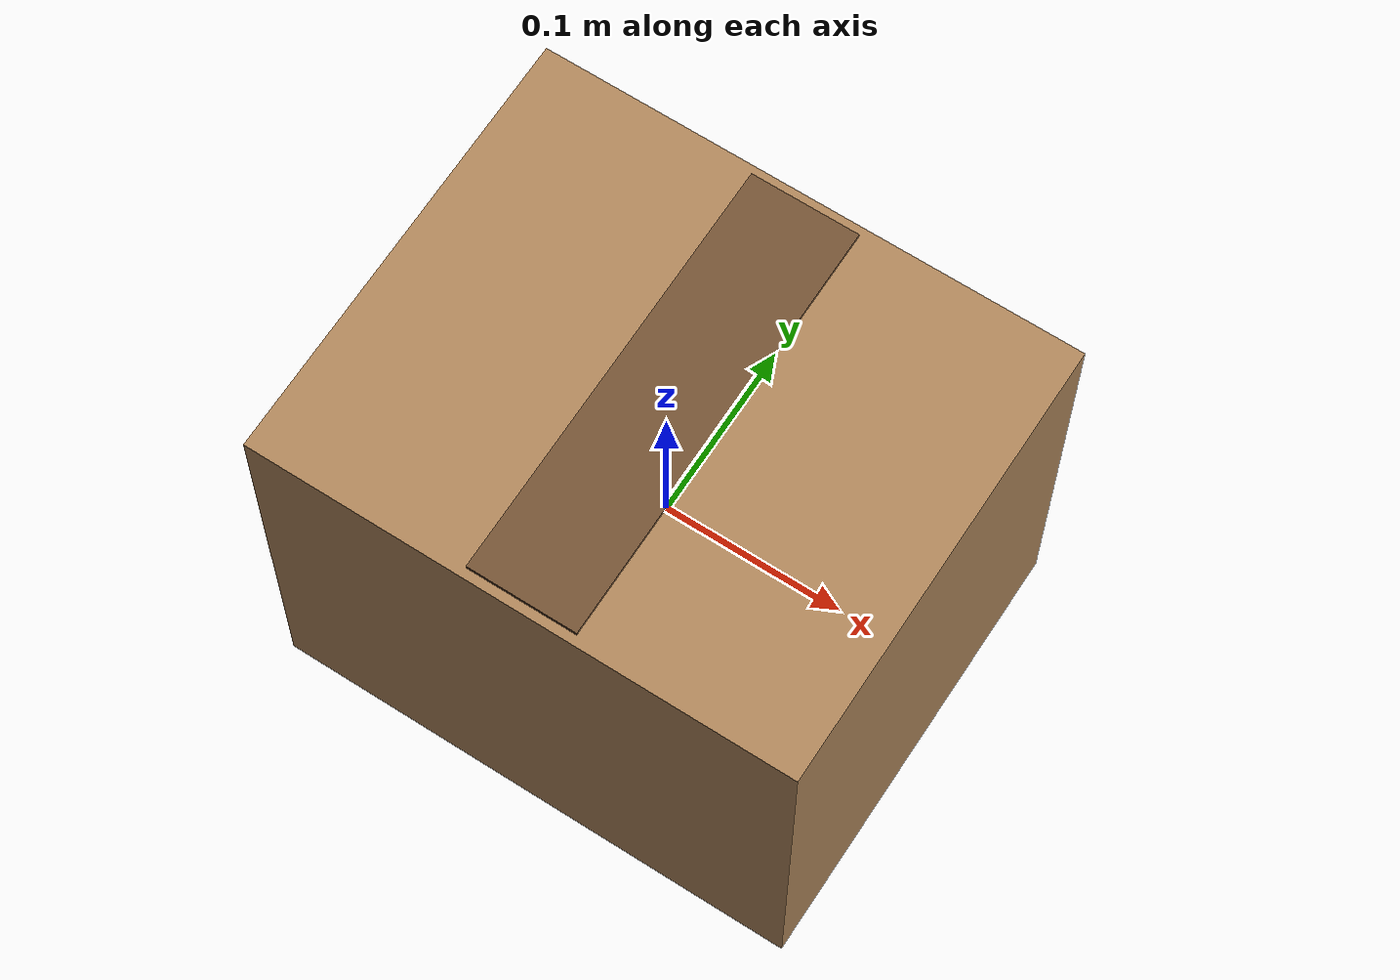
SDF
<?xml version="1.0" ?>
<sdf version="1.9">
  <model name="carton_box">
    <static>true</static>
    <link name="link">
      <collision name="collision">
        <geometry><box><size>0.3 0.25 0.25</size></box></geometry>
      </collision>
      <visual name="box">
        <geometry><box><size>0.3 0.25 0.25</size></box></geometry>
        <material>
          <ambient>0.62 0.47 0.32 1</ambient>
          <diffuse>0.68 0.52 0.35 1</diffuse>
          <specular>0.05 0.05 0.05 1</specular>
        </material>
      </visual>
      <visual name="tape">
        <pose>0 0 0.001 0 0 0</pose>
        <geometry><box><size>0.06 0.24 0.252</size></box></geometry>
        <material>
          <ambient>0.42 0.3 0.18 1</ambient>
          <diffuse>0.45 0.32 0.2 1</diffuse>
        </material>
      </visual>
    </link>
  </model>
</sdf>
